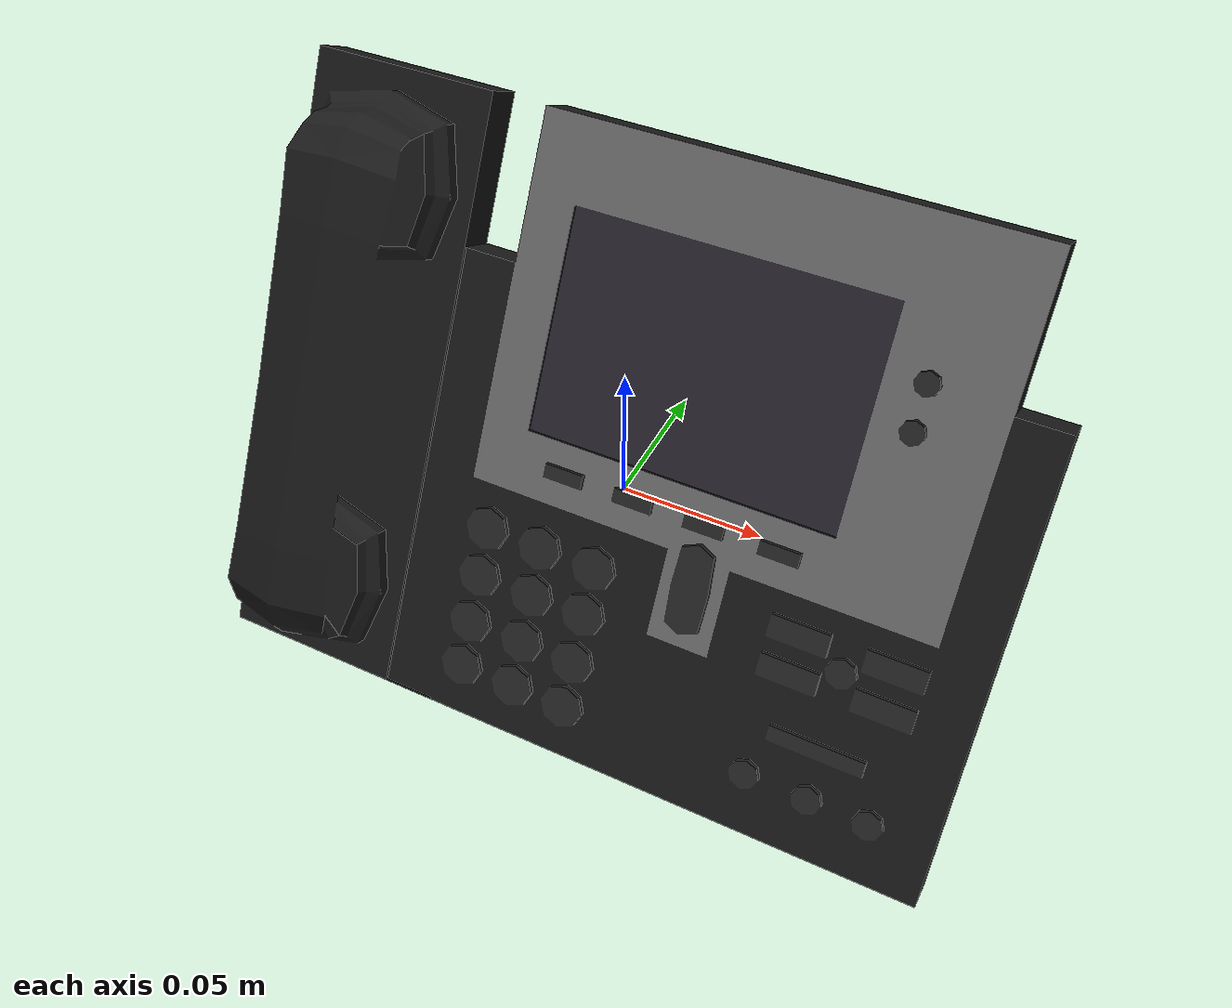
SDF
<?xml version='1.0'?>
<sdf version='1.5'>
    <model name="402_phone">
        <pose>0 0 0 0 0 0</pose>
        <static>false</static>
        <link name='model_body'>
            <visual name="visual">
                <geometry>
                    <mesh>
                        <uri>model://rs_gazebo/meshes/ss_hq4/402_phone/402_phone_visual.dae</uri>
                        <scale>1 1 1</scale>
                    </mesh>
                </geometry>
            </visual>

            <collision name="collision">
                <geometry>
                    <mesh>
                        <uri>model://rs_gazebo/meshes/ss_hq4/402_phone/402_phone_collision.stl</uri>
                        <scale>1 1 1</scale>
                    </mesh>
                </geometry>
            </collision>

            <inertial>
                <pose> 0 0 0 0 0 0</pose>
                <inertia>
                    <ixx>0.00234375</ixx>
                    <ixy>0</ixy>
                    <ixz>0</ixz>
                    <iyy>0.00615</iyy>
                    <iyz>0</iyz>
                    <izz>0.00834375</izz>
                </inertia>
                <mass>1.0</mass>
            </inertial>
        </link>
    </model>
</sdf>
